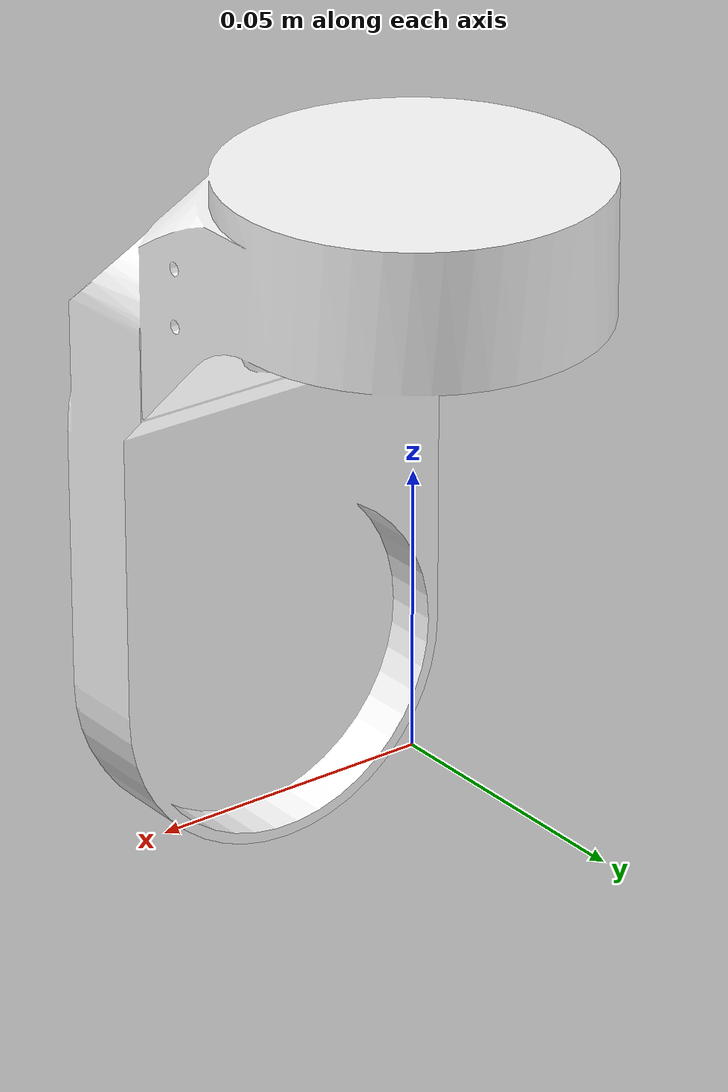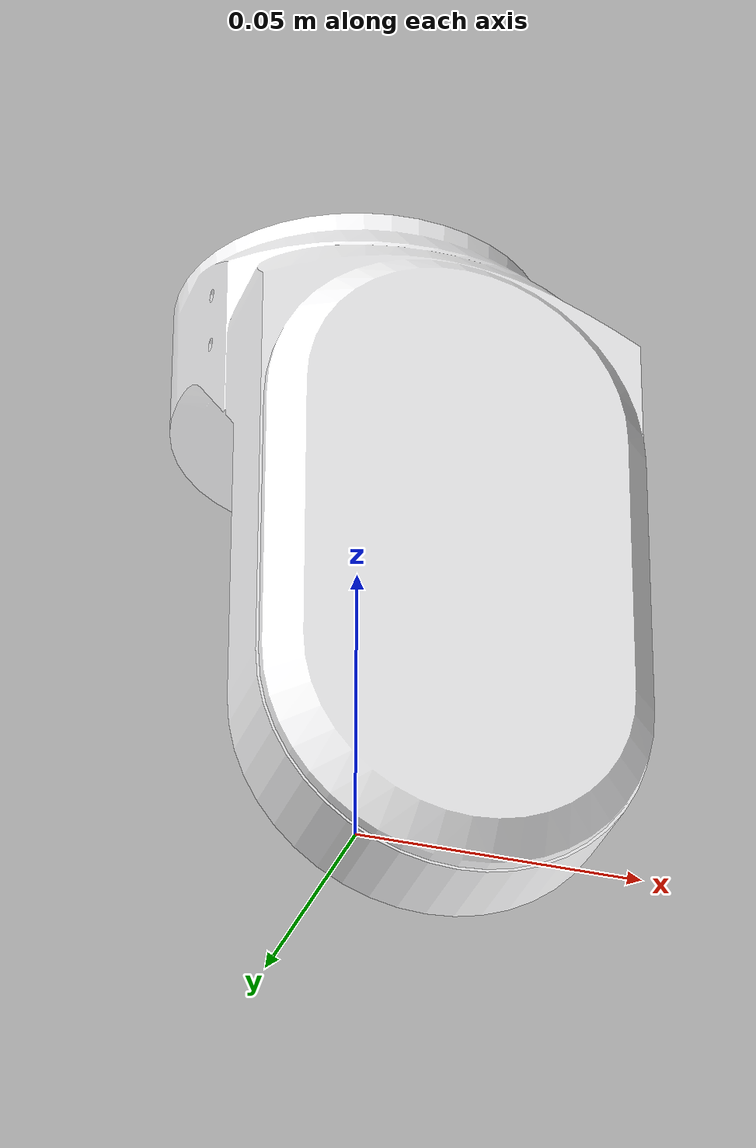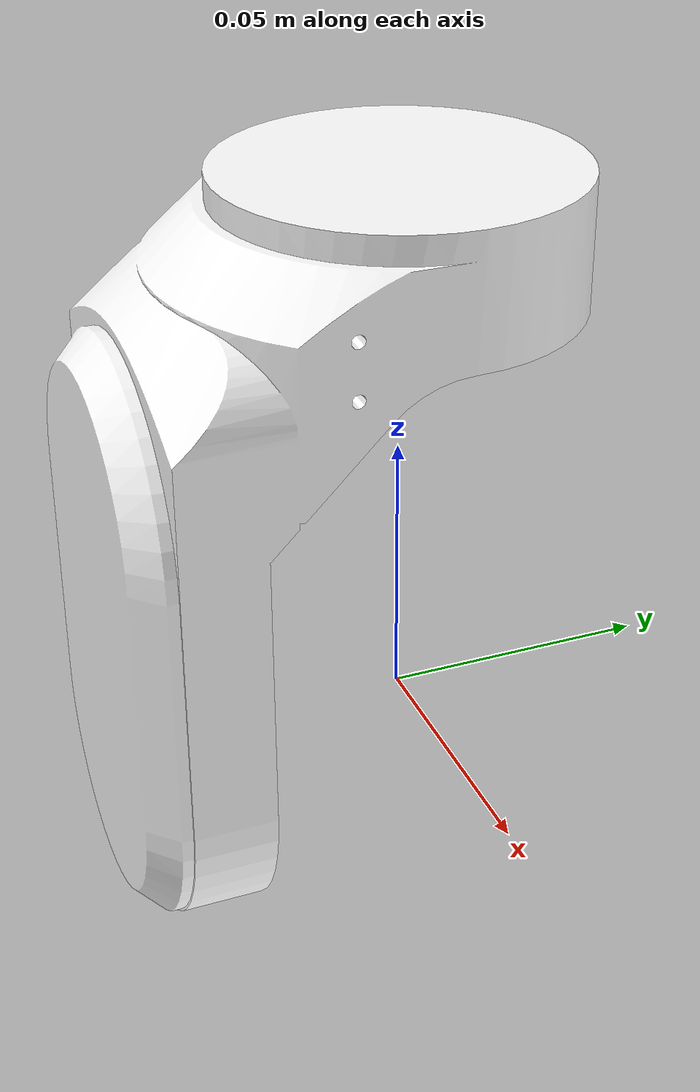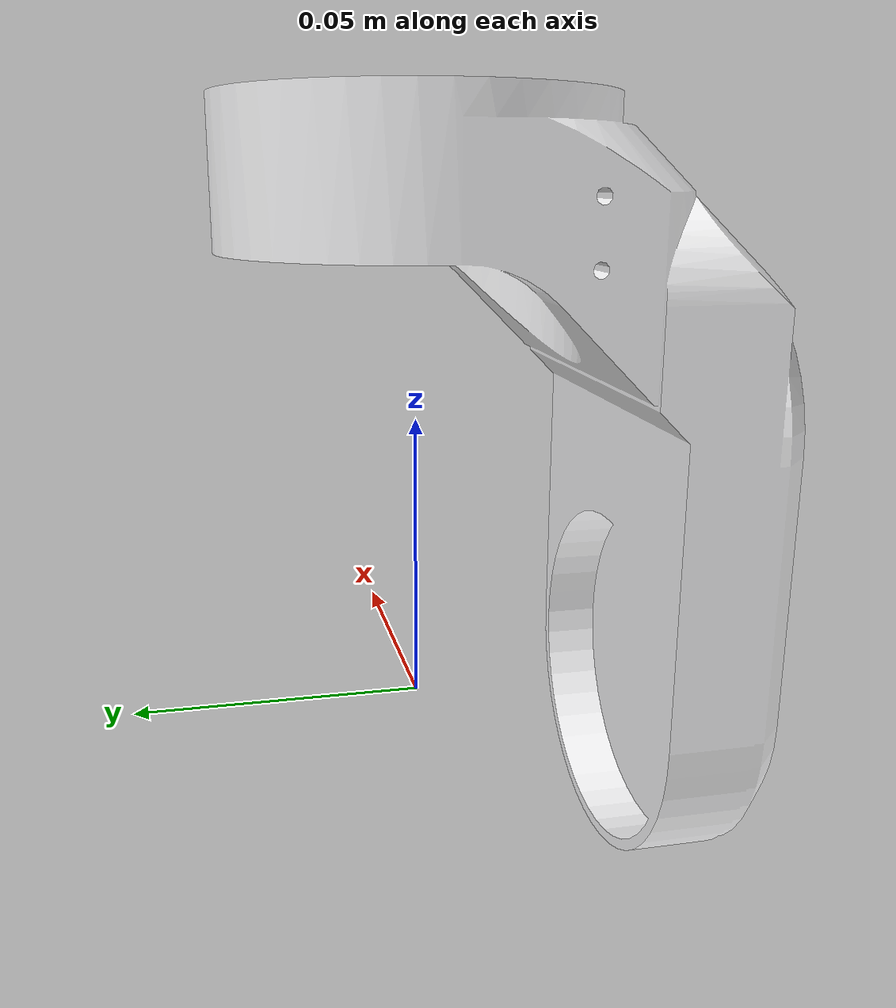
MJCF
<mujoco model="LINK_11">
  <default>
    <default class="visual">
      <geom group="2" type="mesh" contype="0" conaffinity="0"/>
    </default>
    <default class="collision">
      <geom group="3" type="mesh"/>
    </default>
  </default>
  <asset>
    <material name="254,254,255" specular="0.9973853333333333" shininess="1.0" rgba="0.996078 0.996078 1.000000 1.000000"/>
    <mesh file="LINK_11.obj"/>
    <mesh file="LINK_11_collision_0.obj"/>
    <mesh file="LINK_11_collision_1.obj"/>
    <mesh file="LINK_11_collision_2.obj"/>
    <mesh file="LINK_11_collision_3.obj"/>
    <mesh file="LINK_11_collision_4.obj"/>
    <mesh file="LINK_11_collision_5.obj"/>
    <mesh file="LINK_11_collision_6.obj"/>
    <mesh file="LINK_11_collision_7.obj"/>
    <mesh file="LINK_11_collision_8.obj"/>
    <mesh file="LINK_11_collision_9.obj"/>
    <mesh file="LINK_11_collision_10.obj"/>
    <mesh file="LINK_11_collision_11.obj"/>
    <mesh file="LINK_11_collision_12.obj"/>
    <mesh file="LINK_11_collision_13.obj"/>
    <mesh file="LINK_11_collision_14.obj"/>
    <mesh file="LINK_11_collision_15.obj"/>
    <mesh file="LINK_11_collision_16.obj"/>
    <mesh file="LINK_11_collision_17.obj"/>
    <mesh file="LINK_11_collision_18.obj"/>
  </asset>
  <worldbody>
    <body name="LINK_11">
      <geom material="254,254,255" mesh="LINK_11" class="visual"/>
      <geom mesh="LINK_11_collision_0" rgba="0.3650433594455934 0.14260814555919976 0.025563781666707697 1" class="collision"/>
      <geom mesh="LINK_11_collision_1" rgba="0.14817141408679746 0.06929830813236981 0.27920269834043254 1" class="collision"/>
      <geom mesh="LINK_11_collision_2" rgba="0.3083194518976746 0.07525146136484373 0.033372092712836254 1" class="collision"/>
      <geom mesh="LINK_11_collision_3" rgba="0.8094592841704364 0.29343898578411887 0.8956217606991858 1" class="collision"/>
      <geom mesh="LINK_11_collision_4" rgba="0.04751401479708384 0.6910114911491307 0.8568737606222868 1" class="collision"/>
      <geom mesh="LINK_11_collision_5" rgba="0.48143237393754756 0.06660852542754081 0.11148973765767667 1" class="collision"/>
      <geom mesh="LINK_11_collision_6" rgba="0.9150148334870353 0.48176096924411027 0.7752454481830191 1" class="collision"/>
      <geom mesh="LINK_11_collision_7" rgba="0.006872108318253911 0.24283141221010562 0.9363073369186977 1" class="collision"/>
      <geom mesh="LINK_11_collision_8" rgba="0.9600940601374168 0.8456754216266622 0.9246339957391166 1" class="collision"/>
      <geom mesh="LINK_11_collision_9" rgba="0.5353543736111613 0.340400187499484 0.8559684740150273 1" class="collision"/>
      <geom mesh="LINK_11_collision_10" rgba="0.45575281034520043 0.2926010891181713 0.35940259433054267 1" class="collision"/>
      <geom mesh="LINK_11_collision_11" rgba="0.7580107225186881 0.03943158458336726 0.8322280637647608 1" class="collision"/>
      <geom mesh="LINK_11_collision_12" rgba="0.3919467542560151 0.7625319421036044 0.5443170286107146 1" class="collision"/>
      <geom mesh="LINK_11_collision_13" rgba="0.040012335972541724 0.36904281223707824 0.23803220354690435 1" class="collision"/>
      <geom mesh="LINK_11_collision_14" rgba="0.32096727694589067 0.20692542037642858 0.455443750025595 1" class="collision"/>
      <geom mesh="LINK_11_collision_15" rgba="0.49378792576537145 0.4639959868564586 0.8151817212388759 1" class="collision"/>
      <geom mesh="LINK_11_collision_16" rgba="0.3546863696632184 0.851164111976249 0.541197754756914 1" class="collision"/>
      <geom mesh="LINK_11_collision_17" rgba="0.5739167587485502 0.8305507109573846 0.7238356997904114 1" class="collision"/>
      <geom mesh="LINK_11_collision_18" rgba="0.03344319167342302 0.45319035854857337 0.38572529424689084 1" class="collision"/>
    </body>
  </worldbody>
</mujoco>
